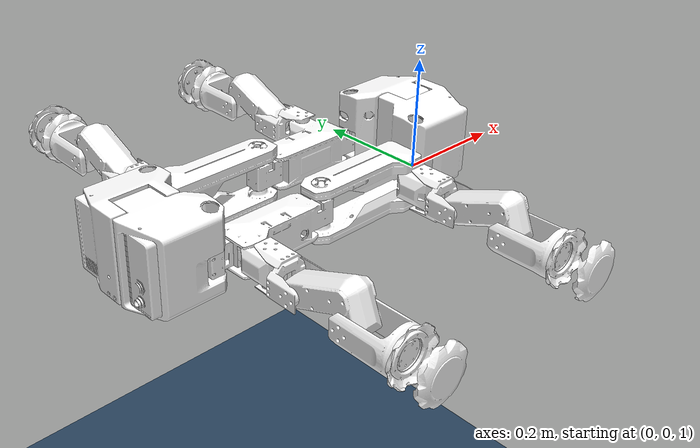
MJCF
<mujoco model="crimson scene">
  <include file="crimson_stand_legInit_forSimOnly.xml"/>

  <statistic center="0 0 0.1" extent="0.8"/>

  <visual>
    <headlight diffuse="0.6 0.6 0.6" ambient="0.3 0.3 0.3" specular="0 0 0"/>
    <rgba haze="0.15 0.25 0.35 1"/>
    <global azimuth="120" elevation="-20"/>
  </visual>

  <asset>
    <texture type="skybox" builtin="gradient" rgb1="0.3 0.5 0.7" rgb2="0 0 0" width="512" height="3072"/>
    <texture type="2d" name="groundplane" builtin="checker" mark="edge" rgb1="0.2 0.3 0.4" rgb2="0.1 0.2 0.3"
      markrgb="0.8 0.8 0.8" width="300" height="300"/>
    <material name="groundplane" texture="groundplane" texuniform="true" texrepeat="5 5" reflectance="0.2"/>
  </asset>

  <worldbody>
    <light pos="0 0 1.5" dir="0 0 -1" directional="true"/>
    <geom name="floor" size="0 0 0.05" type="plane" material="groundplane" friction="0.8"/>
  </worldbody>
</mujoco>

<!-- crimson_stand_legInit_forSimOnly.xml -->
<mujoco model="crimson_stand_legInit_forSimOnly">
  <compiler angle="radian" meshdir="../meshes/"/>

  <visual>
        <headlight ambient="0.5 0.5 0.5"/>
  </visual>
  <option timestep="0.0005" integrator="implicitfast" gravity="0 0 -9.81">
        <flag contact="enable" energy="enable" gravity="disable"/>
  </option>

  <asset>
    <mesh name="frameBasLink" file="frameBasLink.STL"/>
    <mesh name="frameLink2" file="frameLink2.STL"/>
    <mesh name="frameLink3" file="frameLink3.STL"/>
    <mesh name="frameLink4" file="frameLink4.STL"/>
    <mesh name="frameLink5" file="frameLink5.STL"/>
    <mesh name="frameLink6" file="frameLink6.STL"/>
    <mesh name="frameLink7" file="frameLink7.STL"/>
    <mesh name="frameLink8" file="frameLink8.STL"/>
    <mesh name="leg1Link1" file="leg1Link1.STL"/>
    <mesh name="leg1Link2" file="leg1Link2.STL"/>
    <mesh name="leg1Link3" file="leg1Link3.STL"/>
    <mesh name="leg1Link4" file="leg1Link4.STL"/>
    <mesh name="leg3Link1" file="leg3Link1.STL"/>
    <mesh name="leg3Link2" file="leg3Link2.STL"/>
    <mesh name="leg3Link3" file="leg3Link3.STL"/>
    <mesh name="leg3Link4" file="leg3Link4.STL"/>
    <mesh name="leg2Link1" file="leg2Link1.STL"/>
    <mesh name="leg2Link2" file="leg2Link2.STL"/>
    <mesh name="leg2Link3" file="leg2Link3.STL"/>
    <mesh name="leg2Link4" file="leg2Link4.STL"/>
    <mesh name="leg0Link1" file="leg0Link1.STL"/>
    <mesh name="leg0Link2" file="leg0Link2.STL"/>
    <mesh name="leg0Link3" file="leg0Link3.STL"/>
    <mesh name="leg0Link4" file="leg0Link4.STL"/>
  </asset>

  <contact>
    <exclude body1="trunk" body2="frameLink2"/>
    <exclude body1="trunk" body2="frameLink8"/>
  </contact>

<worldbody>
  <body name="trunk" pos="0 0 1.0">
    <inertial pos="0.0336344 0.0576079 0.0596913" mass="0.5" diaginertia="0.0001 0.0001 0.0001"/>
    <geom type="mesh" contype="0" conaffinity="0" group="1" density="0" rgba="1 1 1 1" mesh="frameBasLink"/>
    <geom type="mesh" rgba="1 1 1 1" mesh="frameBasLink"/>
    <body name="frameLink2" pos="0 0.079 -0.05245" quat="0.499998 0.5 0.500002 0.5">
      <inertial pos="0.0336344 0.0576079 0.0596913" quat="0.646457 -0.249757 -0.215756 0.687869" mass="0.5" diaginertia="0.0001 0.0001 0.0001"/>
      <joint name="frameJoint2" pos="0 0 0" axis="0 0 1"/>
      <geom type="mesh" contype="0" conaffinity="0" group="1" density="0" rgba="1 1 1 1" mesh="frameLink2"/>
      <geom type="mesh" rgba="1 1 1 1" mesh="frameLink2"/>
      <body name="frameLink3" pos="0.079 0.05245 0" quat="-0.500004 0.499998 -0.500002 -0.499996">
        <inertial pos="0.11225 -3.8077e-08 -0.00068181" quat="0.500005 0.500005 0.499995 0.499995" mass="0.3" diaginertia="0.0001 0.0001 0.0001"/>
        <joint name="frameJoint3" pos="0 0 0" axis="0 0 1"/>
        <geom type="mesh" contype="0" conaffinity="0" group="1" density="0" rgba="1 1 1 1" mesh="frameLink3"/>
        <geom type="mesh" rgba="1 1 1 1" mesh="frameLink3"/>
        <body name="frameLink4" pos="0.2245 0 0">
          <inertial pos="0.1342 -0.002438 0.0021761" quat="0.00940962 0.710807 -0.0103741 0.703248" mass="0.5" diaginertia="0.0001 0.0001 0.0001"/>
          <joint name="frameJoint4" pos="0 0 0" axis="0 0 1"/>
          <geom type="mesh" contype="0" conaffinity="0" group="1" density="0" rgba="1 1 1 1" mesh="frameLink4"/>
          <geom type="mesh" rgba="1 1 1 1" mesh="frameLink4"/>
          <body name="frameLink5" pos="0.2245 0 0" quat="0.707105 0 0 0.707108">
            <inertial pos="0.041026 -0.058567 0.020014" quat="0.38878 0.598981 -0.37038 0.594046" mass="0.5" diaginertia="0.0001 0.0001 0.0001"/>
            <joint name="frameJoint5" pos="0 0 0" axis="0 0 1"/>
            <geom type="mesh" contype="0" conaffinity="0" group="1" density="0" rgba="1 1 1 1" mesh="frameLink5"/>
            <geom type="mesh" rgba="1 1 1 1" mesh="frameLink5"/>
            <body name="frameLink6" pos="0.079 0 -0.05245" quat="0.707105 -0.707108 0 0">
              <inertial pos="0.033709 -0.057893 -0.060249" quat="0.689226 0.219871 0.252459 0.642564" mass="0.5" diaginertia="0.0001 0.0001 0.0001"/>
              <joint name="frameJoint6" pos="0 0 0" axis="0 0 -1"/>
              <geom type="mesh" contype="0" conaffinity="0" group="1" density="0" rgba="1 1 1 1" mesh="frameLink6"/>
              <geom type="mesh" rgba="1 1 1 1" mesh="frameLink6"/>
              <body name="frameLink7" pos="0.079 -0.05245 0" quat="-0.500004 -0.499998 0.500002 -0.499996">
                <inertial pos="0.14739 6.1669e-06 -0.00046903" quat="0.497919 0.502437 0.502059 0.497565" mass="0.3" diaginertia="0.0001 0.0001 0.0001"/>
                <joint name="frameJoint7" pos="0 0 0" axis="0 0 1"/>
                <geom type="mesh" contype="0" conaffinity="0" group="1" density="0" rgba="1 1 1 1" mesh="frameLink7"/>
                <geom type="mesh" rgba="1 1 1 1" mesh="frameLink7"/>
                <body name="frameLink8" pos="0.2245 0 0">
                  <inertial pos="0.11936 -0.0028798 -5.2537e-05" quat="0.011588 0.70681 -0.0121484 0.707204" mass="0.5" diaginertia="0.0001 0.0001 0.0001"/>
                  <joint name="frameJoint8" pos="0 0 0" axis="0 0 1"/>
                  <geom type="mesh" contype="0" conaffinity="0" group="1" density="0" rgba="1 1 1 1" mesh="frameLink8"/>
                  <geom type="mesh" rgba="1 1 1 1" mesh="frameLink8"/>
                  <body name="leg1Link1" pos="0.17304 -0.073664 0" quat="0.707105 0 0 -0.707108">
                    <inertial pos="0.03746 -2.5177e-05 -8.0299e-05" quat="0.92388 0.382683 0 0" mass="0.11085" diaginertia="3.5819e-05 3.56367e-05 3.56333e-05"/>
                    <joint name="leg1Joint1" pos="0 0 0" axis="0 0 1"/>
                    <geom type="mesh" contype="0" conaffinity="0" group="1" density="0" rgba="1 1 1 1" mesh="leg1Link1"/>
                    <geom type="mesh" rgba="1 1 1 1" mesh="leg1Link1"/>
                    <body name="leg1Link2" pos="0.074919 0 0" quat="0.707105 0.707108 0 0">
                      <inertial pos="0.056725 0.011378 -0.00056886" quat="-0.0540989 0.705016 0.0490145 0.705424" mass="0.23246" diaginertia="0.000222892 0.000190317 9.72505e-05"/>
                      <joint name="leg1Joint2" pos="0 0 0" axis="0 0 1"/>
                      <geom type="mesh" contype="0" conaffinity="0" group="1" density="0" rgba="1 1 1 1" mesh="leg1Link2"/>
                      <geom type="mesh" rgba="1 1 1 1" mesh="leg1Link2"/>
                      <body name="leg1Link3" pos="0.10528 0 0">
                        <inertial pos="0.043398 -0.00046421 -0.00014369" quat="0.999714 0.0233587 -0.000448313 0.00515039" mass="0.10463" diaginertia="7.83485e-05 6.42514e-05 5.099e-05"/>
                        <joint name="leg1Joint3" pos="0 0 0" axis="0 0 1"/>
                        <geom type="mesh" contype="0" conaffinity="0" group="1" density="0" rgba="1 1 1 1" mesh="leg1Link3"/>
                        <geom type="mesh" rgba="1 1 1 1" mesh="leg1Link3"/>
                        <body name="leg1Link4" pos="0.092497 0 0" quat="0.499998 0.5 0.500002 0.5">
                          <inertial pos="0.00010248 -0.00018474 0.035576" quat="-0.214114 0.673912 0.214142 0.6739" mass="0.049466" diaginertia="5.4403e-05 2.7479e-05 2.7473e-05"/>
                          <joint name="leg1Joint4" pos="0 0 0" axis="0 0 1"/>
                          <geom type="mesh" contype="0" conaffinity="0" group="1" density="0" rgba="1 1 1 1" mesh="leg1Link4"/>
                          <geom type="mesh" rgba="1 1 1 1" mesh="leg1Link4"/>
                        </body>
                      </body>
                    </body>
                  </body>
                </body>
                <body name="leg3Link1" pos="0.051605 -0.073842 0" quat="0.707105 0 0 -0.707108">
                  <inertial pos="0.0374596 -2.51772e-05 -8.02984e-05" quat="0.923623 0.383301 0 0" mass="0.11085" diaginertia="3.58188e-05 3.56371e-05 3.56337e-05"/>
                  <joint name="leg3Joint1" pos="0 0 0" axis="0 0 1"/>
                  <geom type="mesh" contype="0" conaffinity="0" group="1" density="0" rgba="1 1 1 1" mesh="leg3Link1"/>
                  <geom type="mesh" rgba="1 1 1 1" mesh="leg3Link1"/>
                  <body name="leg3Link2" pos="0.074919 0 0" quat="0.707105 0.707108 0 0">
                    <inertial pos="0.0567252 0.0113781 -0.000488184" quat="-0.0541001 0.705016 0.0490166 0.705424" mass="0.232456" diaginertia="0.00022289 0.000190313 9.72503e-05"/>
                    <joint name="leg3Joint2" pos="0 0 0" axis="0 0 1"/>
                    <geom type="mesh" contype="0" conaffinity="0" group="1" density="0" rgba="1 1 1 1" mesh="leg3Link2"/>
                    <geom type="mesh" rgba="1 1 1 1" mesh="leg3Link2"/>
                    <body name="leg3Link3" pos="0.10528 0 0">
                      <inertial pos="0.0433981 -0.000464208 -0.00014369" quat="0.999714 0.0233586 -0.000448336 0.00515051" mass="0.104632" diaginertia="7.83488e-05 6.42517e-05 5.09903e-05"/>
                      <joint name="leg3Joint3" pos="0 0 0" axis="0 0 1"/>
                      <geom type="mesh" contype="0" conaffinity="0" group="1" density="0" rgba="1 1 1 1" mesh="leg3Link3"/>
                      <geom type="mesh" rgba="1 1 1 1" mesh="leg3Link3"/>
                      <body name="leg3Link4" pos="0.092497 0 0" quat="0.499998 0.5 0.500002 0.5">
                        <inertial pos="-5.35441e-06 4.7895e-05 0.0355764" quat="-0.202375 0.67753 0.202403 0.677518" mass="0.0494659" diaginertia="5.44028e-05 2.7479e-05 2.74728e-05"/>
                        <joint name="leg3Joint4" pos="0 0 0" axis="0 0 1"/>
                        <geom type="mesh" contype="0" conaffinity="0" group="1" density="0" rgba="1 1 1 1" mesh="leg3Link4"/>
                        <geom type="mesh" rgba="1 1 1 1" mesh="leg3Link4"/>
                      </body>
                    </body>
                  </body>
                </body>
              </body>
            </body>
          </body>
          <body name="leg2Link1" pos="0.17336 -0.073442 0" quat="0.707105 0 0 -0.707108">
            <inertial pos="0.0374596 -2.51772e-05 -8.02984e-05" quat="0.923623 0.383301 0 0" mass="0.11085" diaginertia="3.58188e-05 3.56371e-05 3.56337e-05"/>
            <joint name="leg2Joint1" pos="0 0 0" axis="0 0 1"/>
            <geom type="mesh" contype="0" conaffinity="0" group="1" density="0" rgba="1 1 1 1" mesh="leg2Link1"/>
            <geom type="mesh" rgba="1 1 1 1" mesh="leg2Link1"/>
            <body name="leg2Link2" pos="0.074919 0 0" quat="0.707105 0.707108 0 0">
              <inertial pos="0.0567252 0.0113781 -0.000568857" quat="-0.0541002 0.705016 0.0490166 0.705424" mass="0.232456" diaginertia="0.00022289 0.000190313 9.72503e-05"/>
              <joint name="leg2Joint2" pos="0 0 0" axis="0 0 1"/>
              <geom type="mesh" contype="0" conaffinity="0" group="1" density="0" rgba="1 1 1 1" mesh="leg2Link2"/>
              <geom type="mesh" rgba="1 1 1 1" mesh="leg2Link2"/>
              <body name="leg2Link3" pos="0.10528 0 0" quat="-3.67321e-06 0 0 1">
                <inertial pos="-0.0433981 0.000464208 -0.00014369" quat="0.999714 -0.0233586 0.000448336 0.00515051" mass="0.104632" diaginertia="7.83488e-05 6.42517e-05 5.09903e-05"/>
                <joint name="leg2Joint3" pos="0 0 0" axis="0 0 1"/>
                <geom type="mesh" contype="0" conaffinity="0" group="1" density="0" rgba="1 1 1 1" mesh="leg2Link3"/>
                <geom type="mesh" rgba="1 1 1 1" mesh="leg2Link3"/>
                <body name="leg2Link4" pos="-0.092497 0 0" quat="0.499998 0.5 -0.500002 -0.5">
                  <inertial pos="0.000102484 -0.000184743 0.0355764" quat="-0.202376 0.67753 0.202405 0.677517" mass="0.0494659" diaginertia="5.44028e-05 2.7479e-05 2.74728e-05"/>
                  <joint name="leg2Joint4" pos="0 0 0" axis="0 0 1"/>
                  <geom type="mesh" contype="0" conaffinity="0" group="1" density="0" rgba="1 1 1 1" mesh="leg2Link4"/>
                  <geom type="mesh" rgba="1 1 1 1" mesh="leg2Link4"/>
                </body>
              </body>
            </body>
          </body>
        </body>
        <body name="leg0Link1" pos="0.051868 -0.07395 0" quat="0.707105 0 0 -0.707108">
          <inertial pos="0.0374596 -2.51772e-05 -8.02984e-05" quat="0.923623 0.383302 0 0" mass="0.11085" diaginertia="3.58188e-05 3.56371e-05 3.56337e-05"/>
          <joint name="leg0Joint1" pos="0 0 0" axis="0 0 1"/>
          <geom type="mesh" contype="0" conaffinity="0" group="1" density="0" rgba="1 1 1 1" mesh="leg0Link1"/>
          <geom type="mesh" rgba="1 1 1 1" mesh="leg0Link1"/>
          <body name="leg0Link2" pos="0.074919 0 0" quat="0.707105 0.707108 0 0">
            <inertial pos="0.0567259 0.0113787 -0.000568727" quat="-0.0541022 0.705017 0.049025 0.705422" mass="0.23246" diaginertia="0.000222893 0.000190315 9.72512e-05"/>
            <joint name="leg0Joint2" pos="0 0 0" axis="0 0 1"/>
            <geom type="mesh" contype="0" conaffinity="0" group="1" density="0" rgba="1 1 1 1" mesh="leg0Link2"/>
            <geom type="mesh" rgba="1 1 1 1" mesh="leg0Link2"/>
            <body name="leg0Link3" pos="0.10528 0 0">
              <inertial pos="0.0433981 -0.000464208 -0.00014369" quat="0.999714 0.0233586 -0.000448339 0.00515051" mass="0.104632" diaginertia="7.83488e-05 6.42517e-05 5.09903e-05"/>
              <joint name="leg0Joint3" pos="0 0 0" axis="0 0 1"/>
              <geom type="mesh" contype="0" conaffinity="0" group="1" density="0" rgba="1 1 1 1" mesh="leg0Link3"/>
              <geom type="mesh" rgba="1 1 1 1" mesh="leg0Link3"/>
              <body name="leg0Link4" pos="0.092497 0 0" quat="0.499998 0.5 0.500002 0.5">
                <inertial pos="0.000102493 -0.000184739 0.0355764" quat="-0.202398 0.677523 0.202426 0.677511" mass="0.0494659" diaginertia="5.44028e-05 2.7479e-05 2.74728e-05"/>
                <joint name="leg0Joint4" pos="0 0 0" axis="0 0 1"/>
                <geom type="mesh" contype="0" conaffinity="0" group="1" density="0" rgba="1 1 1 1" mesh="leg0Link4"/>
                <geom type="mesh" rgba="1 1 1 1" mesh="leg0Link4"/>
              </body>
            </body>
          </body>
        </body>
      </body>
    </body>
	</body>
  </worldbody>

  <equality>
    <connect name="c1" body1="frameLink8" body2="trunk" anchor="0.2245 0 -0.01" solimp="1 1 0 0 0"/>
    <connect name="c2" body1="frameLink8" body2="trunk" anchor="0.2245 0 0.01" solimp="1 1 0 0 0"/>
  </equality>

  <actuator>
    <position name="FR_Joint1" ctrllimited="true" ctrlrange="-3.1416 3.1416" joint="leg1Joint1" kp="30" kv="5"/>
    <position name="FR_Joint2" ctrllimited="true" ctrlrange="-3.1416 3.1416" joint="leg1Joint2" kp="30" kv="5"/>
    <position name="FR_Joint3" ctrllimited="true" ctrlrange="-3.1416 3.1416" joint="leg1Joint3" kp="30" kv="5"/>
    <position name="FL_Joint1" ctrllimited="true" ctrlrange="-3.1416 3.1416" joint="leg0Joint1" kp="30" kv="5"/>
    <position name="FL_Joint2" ctrllimited="true" ctrlrange="-3.1416 3.1416" joint="leg0Joint2" kp="30" kv="5"/>
    <position name="FL_Joint3" ctrllimited="true" ctrlrange="-3.1416 3.1416" joint="leg0Joint3" kp="30" kv="5"/>
    <position name="RR_Joint1" ctrllimited="true" ctrlrange="-3.1416 3.1416" joint="leg3Joint1" kp="30" kv="5"/>
    <position name="RR_Joint2" ctrllimited="true" ctrlrange="-3.1416 3.1416" joint="leg3Joint2" kp="30" kv="5"/>
    <position name="RR_Joint3" ctrllimited="true" ctrlrange="-3.1416 3.1416" joint="leg3Joint3" kp="30" kv="5"/>
    <position name="RL_Joint1" ctrllimited="true" ctrlrange="-3.1416 3.1416" joint="leg2Joint1" kp="30" kv="5"/>
    <position name="RL_Joint2" ctrllimited="true" ctrlrange="-3.1416 3.1416" joint="leg2Joint2" kp="30" kv="5"/>
    <position name="RL_Joint3" ctrllimited="true" ctrlrange="-3.1416 3.1416" joint="leg2Joint3" kp="30" kv="5"/>

	<position name="frameJoint2_motor" ctrllimited="true" ctrlrange="-6.8 0" joint="frameJoint2" kp="300" kv="5"/>
	<position name="frameJoint3_motor" ctrllimited="true" ctrlrange="-3.1416 3.1416" joint="frameJoint3" kp="300" kv="5"/>
	<position name="frameJoint4_motor" ctrllimited="true" ctrlrange="-3.1416 3.1416" joint="frameJoint4" kp="300" kv="5"/>
	<position name="frameJoint5_motor" ctrllimited="true" ctrlrange="-3.1416 3.1416" joint="frameJoint5" kp="300" kv="5"/>
	<position name="frameJoint6_motor" ctrllimited="true" ctrlrange="-6.8 0" joint="frameJoint6" kp="300" kv="5"/>
	<position name="frameJoint7_motor" ctrllimited="true" ctrlrange="-3.1416 3.1416" joint="frameJoint7" kp="300" kv="5"/>
	<position name="frameJoint8_motor" ctrllimited="true" ctrlrange="-3.1416 3.1416" joint="frameJoint8" kp="300" kv="5"/>
   </actuator>

</mujoco>
